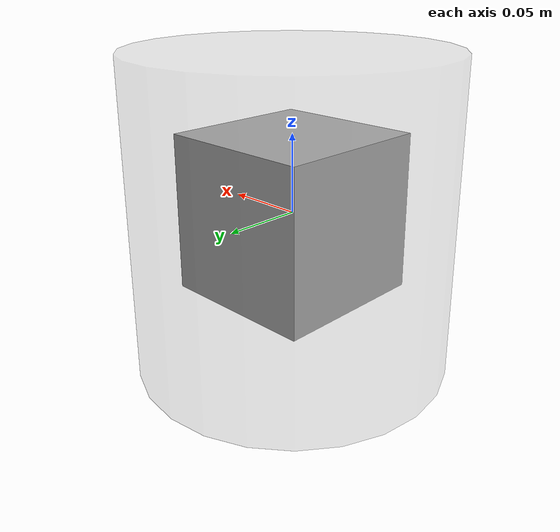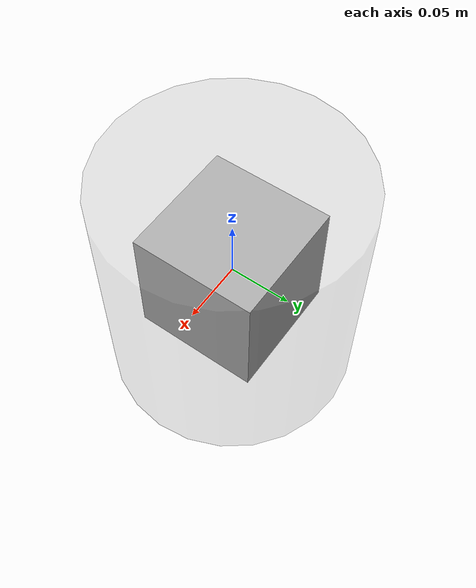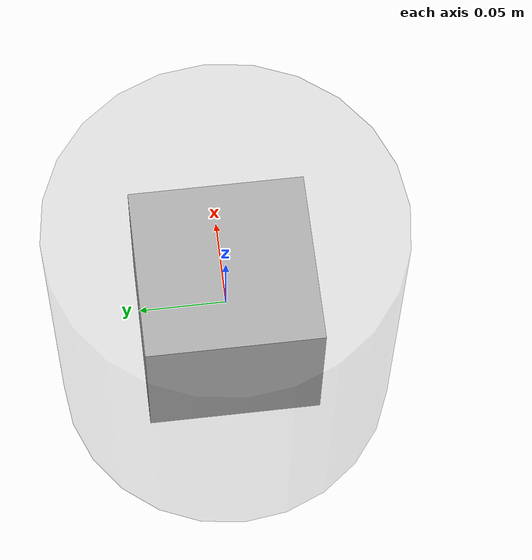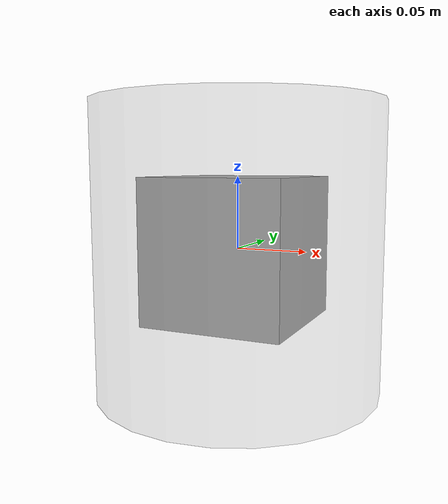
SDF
<?xml version='1.0'?>
<sdf version='1.6'>
<!-- Auto generated with SdfGen.py -->
<model name="item_in_bag" xmlns:drake='drake'>
  <link name="bag">
    <inertial>
      <inertia>
        <ixx>0.0001</ixx>
        <iyy>0.0001</iyy>
        <izz>0.0001</izz>
        <ixy>0.000000</ixy>
        <ixz>0.000000</ixz>
        <iyz>0.000000</iyz>
      </inertia>
      <pose>0 0 0 0 0 0</pose>
      <mass>0.05</mass>
    </inertial>
    <visual name="bag_visual">
      <pose>0 0 0 0 0 0</pose>
      <geometry>
          <cylinder>
            <radius>0.1</radius>
            <length>0.2</length>
          </cylinder>
      </geometry>
      <material>
        <diffuse>0.5 0.5 0.5 0.2</diffuse>
      </material>
    </visual>
    <collision name="bag_collision">
      <pose>0 0 0 0 0 0</pose>
      <geometry>
          <cylinder>
            <radius>0.1</radius>
            <length>0.2</length>
          </cylinder>
      </geometry>
      <drake:proximity_properties>
        <drake:compliant_hydroelastic/>
        <drake:hydroelastic_modulus>5e+05</drake:hydroelastic_modulus>
        <drake:relaxation_time>0.1</drake:relaxation_time>
        <drake:hunt_crossley_dissipation>10.0</drake:hunt_crossley_dissipation>
        <drake:mesh_resolution_hint>0.01</drake:mesh_resolution_hint>
        <drake:point_contact_stiffness>1000000.0</drake:point_contact_stiffness>
        <!-- For more information on how this value is derived, refer to the following quip document:
        https://quip-amazon.com/Vp8gAuN3MW70/Friction-Coefficient-Values-for-Materials-in-Gemini -->
        <drake:mu_dynamic>0.3</drake:mu_dynamic>
        <drake:mu_static>0.3</drake:mu_static>
      </drake:proximity_properties>
    </collision>
  </link>

  <link name="item">
    <inertial>
      <inertia>
        <ixx>0.001</ixx>
        <iyy>0.001</iyy>
        <izz>0.001</izz>
        <ixy>0.000000</ixy>
        <ixz>0.000000</ixz>
        <iyz>0.000000</iyz>
      </inertia>
      <pose>0 0 0 0 0 0</pose>
      <mass>0.5</mass>
    </inertial>
    <visual name="item_visual">
      <pose>0 0 0 0 0 0</pose>
      <geometry>
        <box>
          <size>0.1 0.1 0.1</size>
        </box>
      </geometry>
    </visual>
    <collision name="item_collision">
      <pose>0 0 0 0 0 0</pose>
      <geometry>
        <box>
          <size>0.1 0.1 0.1</size>
        </box>
      </geometry>
      <drake:proximity_properties>
        <drake:compliant_hydroelastic/>
        <drake:hydroelastic_modulus>1e+06</drake:hydroelastic_modulus>
        <drake:hunt_crossley_dissipation>10.0</drake:hunt_crossley_dissipation>
        <drake:relaxation_time>0.1</drake:relaxation_time>
        <drake:mesh_resolution_hint>0.1</drake:mesh_resolution_hint>
        <drake:point_contact_stiffness>1000000.0</drake:point_contact_stiffness>
        <drake:mu_dynamic>0.3</drake:mu_dynamic>
        <drake:mu_static>0.3</drake:mu_static>
      </drake:proximity_properties>
    </collision>
  </link>

  <frame name='frameA'>
    <pose relative_to="bag">0 0 0 0 0 0</pose>
  </frame>
  <frame name='frameC' attached_to='item'/>
  <drake:linear_bushing_rpy>
    <drake:bushing_frameA>frameA</drake:bushing_frameA>
    <drake:bushing_frameC>frameC</drake:bushing_frameC>
    <drake:bushing_torque_stiffness>0.1 0.1 0.1</drake:bushing_torque_stiffness>
    <drake:bushing_torque_damping>0.01 0.01 0.01</drake:bushing_torque_damping>
    <drake:bushing_force_stiffness>20 20 20</drake:bushing_force_stiffness>
    <drake:bushing_force_damping>2 2 2</drake:bushing_force_damping>
  </drake:linear_bushing_rpy>

  <drake:collision_filter_group name="item_in_bag_self_collision_filtering_group">
    <drake:member>bag</drake:member>
    <drake:member>item</drake:member>
    <drake:ignored_collision_filter_group>item_in_bag_self_collision_filtering_group</drake:ignored_collision_filter_group>
  </drake:collision_filter_group>

</model>
</sdf>
